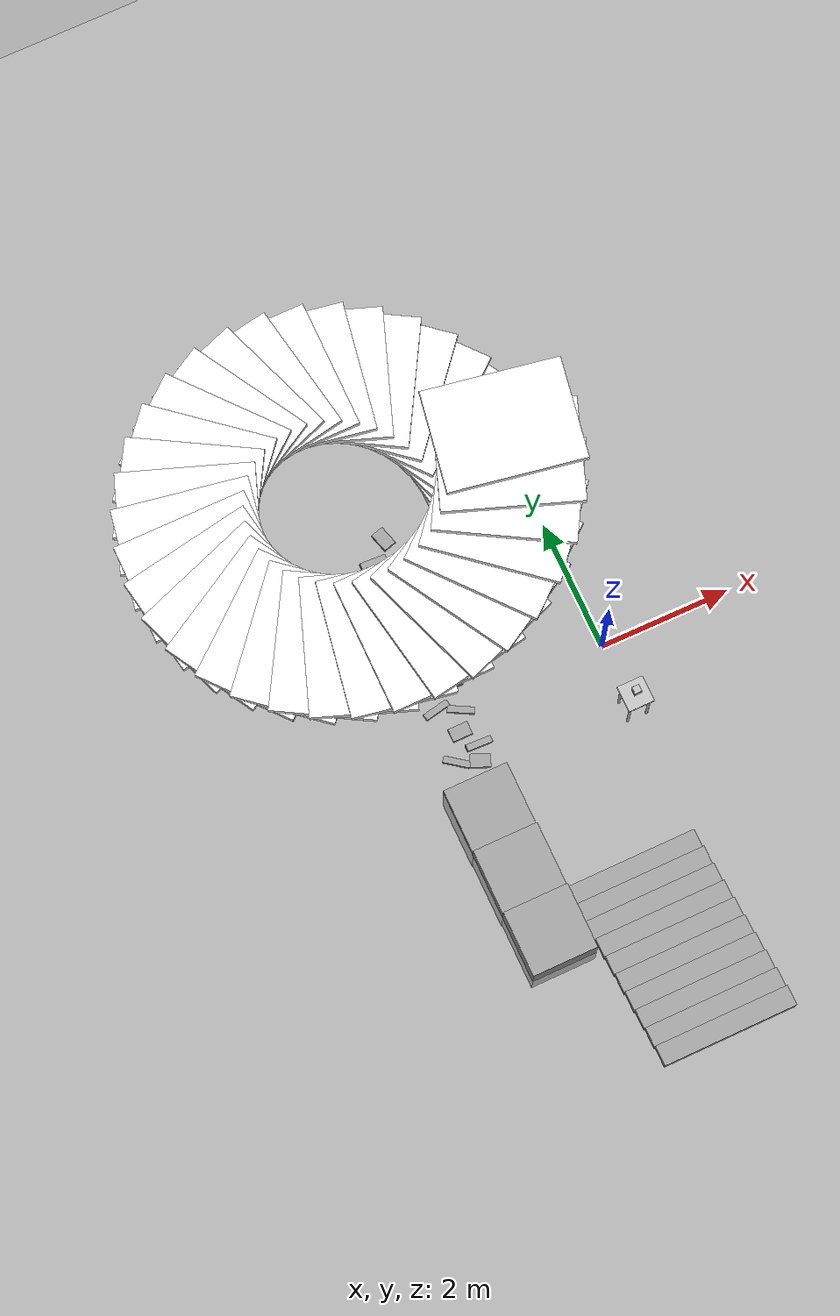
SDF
<sdf version="1.7">
 <world name="default">
  <model name="ground_plane">
   <static>1</static>
   <link name="link">
    <collision name="collision">
     <geometry><plane><normal>0 0 1</normal><size>100 100</size></plane></geometry>
     <surface><friction><ode><mu>200</mu><mu2>200</mu2></ode></friction></surface>
    </collision>
    <visual name="visual">
     <cast_shadows>0</cast_shadows>
     <geometry><plane><normal>0 0 1</normal><size>100 100</size></plane></geometry>
     <material>
      <script><uri>file://media/materials/scripts/gazebo.material</uri><name>Gazebo/Grey</name></script>
     </material>
    </visual>
   </link>
  </model>
  <model name="box_0.4_0.1_0.07_5">
   <pose>-2.38032 1.20344 0 0 -0 0.675768</pose>
   <link name="Stairs_14">
    <visual name="Stairs_14_Visual_0">
     <pose>0 0 0.035 0 -0 0</pose>
     <geometry><box><size>0.4 0.1 0.07</size></box></geometry>
     <material>
      <script><uri>file://media/materials/scripts/gazebo.material</uri><name>Gazebo/Grey</name></script>
      <ambient>1 1 1 1</ambient>
     </material>
     <meta><layer>0</layer></meta>
    </visual>
    <collision name="Stairs_14_Collision_0">
     <geometry><box><size>0.4 0.1 0.07</size></box></geometry>
     <pose>0 0 0.035 0 -0 0</pose>
     <surface><friction><ode><mu>200</mu><mu2>200</mu2></ode></friction></surface>
    </collision>
   </link>
   <static>1</static>
  </model>
  <model name="box_0.4_0.1_0.07_10">
   <pose>-2.5817 0.133983 0 0 -0 0.188316</pose>
   <link name="Stairs_14">
    <visual name="Stairs_14_Visual_0">
     <pose>0 0 0.035 0 -0 0</pose>
     <geometry><box><size>0.4 0.1 0.07</size></box></geometry>
     <material>
      <script><uri>file://media/materials/scripts/gazebo.material</uri><name>Gazebo/Grey</name></script>
      <ambient>1 1 1 1</ambient>
     </material>
     <meta><layer>0</layer></meta>
    </visual>
    <collision name="Stairs_14_Collision_0">
     <geometry><box><size>0.4 0.1 0.07</size></box></geometry>
     <pose>0 0 0.035 0 -0 0</pose>
     <surface><friction><ode><mu>200</mu><mu2>200</mu2></ode></friction></surface>
    </collision>
   </link>
   <static>1</static>
  </model>
  <model name="box_0.3_0.2_0.1_1">
   <pose>-2.32668 -0.803117 0 0 0 -0.389703</pose>
   <link name="Stairs_9">
    <visual name="Stairs_9_Visual_0">
     <pose>0 0 0.035 0 -0 0</pose>
     <geometry><box><size>0.3 0.2 0.07</size></box></geometry>
     <material>
      <script><uri>file://media/materials/scripts/gazebo.material</uri><name>Gazebo/Grey</name></script>
      <ambient>1 1 1 1</ambient>
     </material>
     <meta><layer>0</layer></meta>
    </visual>
    <collision name="Stairs_9_Collision_0">
     <geometry><box><size>0.3 0.2 0.07</size></box></geometry>
     <pose>0 0 0.035 0 -0 0</pose>
     <surface><friction><ode><mu>200</mu><mu2>200</mu2></ode></friction></surface>
    </collision>
   </link>
   <static>1</static>
  </model>
  <model name="box_0.3_0.2_0.1_6">
   <pose>-2.40905 -0.299713 0 0 -0 0</pose>
   <link name="Stairs_9">
    <visual name="Stairs_9_Visual_0">
     <pose>0 0 0.035 0 -0 0</pose>
     <geometry><box><size>0.3 0.2 0.07</size></box></geometry>
     <material>
      <script><uri>file://media/materials/scripts/gazebo.material</uri><name>Gazebo/Grey</name></script>
      <ambient>1 1 1 1</ambient>
     </material>
     <meta><layer>0</layer></meta>
    </visual>
    <collision name="Stairs_9_Collision_0">
     <geometry><box><size>0.3 0.2 0.07</size></box></geometry>
     <pose>0 0 0.035 0 -0 0</pose>
     <surface><friction><ode><mu>200</mu><mu2>200</mu2></ode></friction></surface>
    </collision>
   </link>
   <static>1</static>
  </model>
  <model name="box_0.3_0.2_0.1_7">
   <pose>-2.29296 0.634577 0 0 0.156533 0</pose>
   <link name="Stairs_9">
    <visual name="Stairs_9_Visual_0">
     <pose>0 0 0.035 0 -0 0</pose>
     <geometry><box><size>0.3 0.2 0.07</size></box></geometry>
     <material>
      <script><uri>file://media/materials/scripts/gazebo.material</uri><name>Gazebo/Grey</name></script>
      <ambient>1 1 1 1</ambient>
     </material>
     <meta><layer>0</layer></meta>
    </visual>
    <collision name="Stairs_9_Collision_0">
     <geometry><box><size>0.3 0.2 0.07</size></box></geometry>
     <pose>0 0 0.035 0 -0 0</pose>
     <surface><friction><ode><mu>200</mu><mu2>200</mu2></ode></friction></surface>
    </collision>
   </link>
   <static>1</static>
  </model>
  <model name="box_0.4_0.1_0.07_21">
   <pose>-2.33177 1.84563 0 -0.297405 -0 -0.354338</pose>
   <link name="Stairs_14">
    <visual name="Stairs_14_Visual_0">
     <pose>0 0 0.035 0 -0 0</pose>
     <geometry><box><size>0.4 0.1 0.07</size></box></geometry>
     <material>
      <script><uri>file://media/materials/scripts/gazebo.material</uri><name>Gazebo/Grey</name></script>
      <ambient>1 1 1 1</ambient>
     </material>
     <meta><layer>0</layer></meta>
    </visual>
    <collision name="Stairs_14_Collision_0">
     <geometry><box><size>0.4 0.1 0.07</size></box></geometry>
     <pose>0 0 0.035 0 -0 0</pose>
     <surface><friction><ode><mu>200</mu><mu2>200</mu2></ode></friction></surface>
    </collision>
   </link>
   <static>1</static>
  </model>
  <model name="box_0.4_0.1_0.07_31">
   <pose>-2.24494 -0.568367 0 0 0.191516 0</pose>
   <link name="Stairs_14">
    <visual name="Stairs_14_Visual_0">
     <pose>0 0 0.035 0 -0 0</pose>
     <geometry><box><size>0.4 0.1 0.07</size></box></geometry>
     <material>
      <script><uri>file://media/materials/scripts/gazebo.material</uri><name>Gazebo/Grey</name></script>
      <ambient>1 1 1 1</ambient>
     </material>
     <meta><layer>0</layer></meta>
    </visual>
    <collision name="Stairs_14_Collision_0">
     <geometry><box><size>0.4 0.1 0.07</size></box></geometry>
     <pose>0 0 0.035 0 -0 0</pose>
     <surface><friction><ode><mu>200</mu><mu2>200</mu2></ode></friction></surface>
    </collision>
   </link>
   <static>1</static>
  </model>
  <model name="box_0.4_0.1_0.07_32">
   <pose>-2.26101 -0.007459 0 0 0 -0.492553</pose>
   <link name="Stairs_14">
    <visual name="Stairs_14_Visual_0">
     <pose>0 0 0.035 0 -0 0</pose>
     <geometry><box><size>0.4 0.1 0.07</size></box></geometry>
     <material>
      <script><uri>file://media/materials/scripts/gazebo.material</uri><name>Gazebo/Grey</name></script>
      <ambient>1 1 1 1</ambient>
     </material>
     <meta><layer>0</layer></meta>
    </visual>
    <collision name="Stairs_14_Collision_0">
     <geometry><box><size>0.4 0.1 0.07</size></box></geometry>
     <pose>0 0 0.035 0 -0 0</pose>
     <surface><friction><ode><mu>200</mu><mu2>200</mu2></ode></friction></surface>
    </collision>
   </link>
   <static>1</static>
  </model>
  <model name="box_0.4_0.1_0.07_33">
   <pose>-2.2734 0.372881 0 0 -0 0</pose>
   <link name="Stairs_14">
    <visual name="Stairs_14_Visual_0">
     <pose>0 0 0.035 0 -0 0</pose>
     <geometry><box><size>0.4 0.1 0.07</size></box></geometry>
     <material>
      <script><uri>file://media/materials/scripts/gazebo.material</uri><name>Gazebo/Grey</name></script>
      <ambient>1 1 1 1</ambient>
     </material>
     <meta><layer>0</layer></meta>
    </visual>
    <collision name="Stairs_14_Collision_0">
     <geometry><box><size>0.4 0.1 0.07</size></box></geometry>
     <pose>0 0 0.035 0 -0 0</pose>
     <surface><friction><ode><mu>200</mu><mu2>200</mu2></ode></friction></surface>
    </collision>
   </link>
   <static>1</static>
  </model>
  <model name="box_0.4_0.1_0.07_34">
   <pose>-2.37805 0.96323 0 0 -0 0.493596</pose>
   <link name="Stairs_14">
    <visual name="Stairs_14_Visual_0">
     <pose>0 0 0.035 0 -0 0</pose>
     <geometry><box><size>0.4 0.1 0.07</size></box></geometry>
     <material>
      <script><uri>file://media/materials/scripts/gazebo.material</uri><name>Gazebo/Grey</name></script>
      <ambient>1 1 1 1</ambient>
     </material>
     <meta><layer>0</layer></meta>
    </visual>
    <collision name="Stairs_14_Collision_0">
     <geometry><box><size>0.4 0.1 0.07</size></box></geometry>
     <pose>0 0 0.035 0 -0 0</pose>
     <surface><friction><ode><mu>200</mu><mu2>200</mu2></ode></friction></surface>
    </collision>
   </link>
   <static>1</static>
  </model>
  <model name="box_0.4_0.1_0.07_35">
   <pose>-2.3534 1.63255 0 0 -0 0</pose>
   <link name="Stairs_14">
    <visual name="Stairs_14_Visual_0">
     <pose>0 0 0.035 0 -0 0</pose>
     <geometry><box><size>0.4 0.1 0.07</size></box></geometry>
     <material>
      <script><uri>file://media/materials/scripts/gazebo.material</uri><name>Gazebo/Grey</name></script>
      <ambient>1 1 1 1</ambient>
     </material>
     <meta><layer>0</layer></meta>
    </visual>
    <collision name="Stairs_14_Collision_0">
     <geometry><box><size>0.4 0.1 0.07</size></box></geometry>
     <pose>0 0 0.035 0 -0 0</pose>
     <surface><friction><ode><mu>200</mu><mu2>200</mu2></ode></friction></surface>
    </collision>
   </link>
   <static>1</static>
  </model>
  <model name="box_0.4_0.1_0.07_36">
   <pose>-2.63647 1.28112 0 0 -0 0</pose>
   <link name="Stairs_14">
    <visual name="Stairs_14_Visual_0">
     <pose>0 0 0.035 0 -0 0</pose>
     <geometry><box><size>0.4 0.1 0.07</size></box></geometry>
     <material>
      <script><uri>file://media/materials/scripts/gazebo.material</uri><name>Gazebo/Grey</name></script>
      <ambient>1 1 1 1</ambient>
     </material>
     <meta><layer>0</layer></meta>
    </visual>
    <collision name="Stairs_14_Collision_0">
     <geometry><box><size>0.4 0.1 0.07</size></box></geometry>
     <pose>0 0 0.035 0 -0 0</pose>
     <surface><friction><ode><mu>200</mu><mu2>200</mu2></ode></friction></surface>
    </collision>
   </link>
   <static>1</static>
  </model>
  <model name="stair-3">
   <pose>-1 -4.5 0 0 -0 0</pose>
   <link name="Stairs_6">
    <visual name="Stairs_6_Visual_0">
     <pose>0 1.35 0.075 0 -0 0</pose>
     <geometry><box><size>2 0.3 0.15</size></box></geometry>
     <material>
      <script><uri>file://media/materials/scripts/gazebo.material</uri><name>Gazebo/Grey</name></script>
      <ambient>1 1 1 1</ambient>
     </material>
     <meta><layer>0</layer></meta>
    </visual>
    <collision name="Stairs_6_Collision_0">
     <geometry><box><size>2 0.3 0.15</size></box></geometry>
     <pose>0 1.35 0.075 0 -0 0</pose>
    </collision>
    <visual name="Stairs_6_Visual_1">
     <pose>0 1.05 0.225 0 -0 0</pose>
     <geometry><box><size>2 0.3 0.15</size></box></geometry>
     <material>
      <script><uri>file://media/materials/scripts/gazebo.material</uri><name>Gazebo/Grey</name></script>
      <ambient>1 1 1 1</ambient>
     </material>
     <meta><layer>0</layer></meta>
    </visual>
    <collision name="Stairs_6_Collision_1">
     <geometry><box><size>2 0.3 0.15</size></box></geometry>
     <pose>0 1.05 0.225 0 -0 0</pose>
     <surface><friction><ode><mu>200</mu><mu2>200</mu2></ode></friction></surface>
    </collision>
    <visual name="Stairs_6_Visual_2">
     <pose>0 0.75 0.375 0 -0 0</pose>
     <geometry><box><size>2 0.3 0.15</size></box></geometry>
     <material>
      <script><uri>file://media/materials/scripts/gazebo.material</uri><name>Gazebo/Grey</name></script>
      <ambient>1 1 1 1</ambient>
     </material>
     <meta><layer>0</layer></meta>
    </visual>
    <collision name="Stairs_6_Collision_2">
     <geometry><box><size>2 0.3 0.15</size></box></geometry>
     <pose>0 0.75 0.375 0 -0 0</pose>
    </collision>
    <visual name="Stairs_6_Visual_3">
     <pose>0 0.45 0.525 0 -0 0</pose>
     <geometry><box><size>2 0.3 0.15</size></box></geometry>
     <material>
      <script><uri>file://media/materials/scripts/gazebo.material</uri><name>Gazebo/Grey</name></script>
      <ambient>1 1 1 1</ambient>
     </material>
     <meta><layer>0</layer></meta>
    </visual>
    <collision name="Stairs_6_Collision_3">
     <geometry><box><size>2 0.3 0.15</size></box></geometry>
     <pose>0 0.45 0.525 0 -0 0</pose>
    </collision>
    <visual name="Stairs_6_Visual_4">
     <pose>0 0.15 0.675 0 -0 0</pose>
     <geometry><box><size>2 0.3 0.15</size></box></geometry>
     <material>
      <script><uri>file://media/materials/scripts/gazebo.material</uri><name>Gazebo/Grey</name></script>
      <ambient>1 1 1 1</ambient>
     </material>
     <meta><layer>0</layer></meta>
    </visual>
    <collision name="Stairs_6_Collision_4">
     <geometry><box><size>2 0.3 0.15</size></box></geometry>
     <pose>0 0.15 0.675 0 -0 0</pose>
    </collision>
    <visual name="Stairs_6_Visual_5">
     <pose>0 -0.15 0.825 0 -0 0</pose>
     <geometry><box><size>2 0.3 0.15</size></box></geometry>
     <material>
      <script><uri>file://media/materials/scripts/gazebo.material</uri><name>Gazebo/Grey</name></script>
      <ambient>1 1 1 1</ambient>
     </material>
     <meta><layer>0</layer></meta>
    </visual>
    <collision name="Stairs_6_Collision_5">
     <geometry><box><size>2 0.3 0.15</size></box></geometry>
     <pose>0 -0.15 0.825 0 -0 0</pose>
    </collision>
    <visual name="Stairs_6_Visual_6">
     <pose>0 -0.45 0.975 0 -0 0</pose>
     <geometry><box><size>2 0.3 0.15</size></box></geometry>
     <material>
      <script><uri>file://media/materials/scripts/gazebo.material</uri><name>Gazebo/Grey</name></script>
      <ambient>1 1 1 1</ambient>
     </material>
     <meta><layer>0</layer></meta>
    </visual>
    <collision name="Stairs_6_Collision_6">
     <geometry><box><size>2 0.3 0.15</size></box></geometry>
     <pose>0 -0.45 0.975 0 -0 0</pose>
    </collision>
    <visual name="Stairs_6_Visual_7">
     <pose>0 -0.75 1.125 0 -0 0</pose>
     <geometry><box><size>2 0.3 0.15</size></box></geometry>
     <material>
      <script><uri>file://media/materials/scripts/gazebo.material</uri><name>Gazebo/Grey</name></script>
      <ambient>1 1 1 1</ambient>
     </material>
     <meta><layer>0</layer></meta>
    </visual>
    <collision name="Stairs_6_Collision_7">
     <geometry><box><size>2 0.3 0.15</size></box></geometry>
     <pose>0 -0.75 1.125 0 -0 0</pose>
    </collision>
    <visual name="Stairs_6_Visual_8">
     <pose>0 -1.05 1.275 0 -0 0</pose>
     <geometry><box><size>2 0.3 0.15</size></box></geometry>
     <material>
      <script><uri>file://media/materials/scripts/gazebo.material</uri><name>Gazebo/Grey</name></script>
      <ambient>1 1 1 1</ambient>
     </material>
     <meta><layer>0</layer></meta>
    </visual>
    <collision name="Stairs_6_Collision_8">
     <geometry><box><size>2 0.3 0.15</size></box></geometry>
     <pose>0 -1.05 1.275 0 -0 0</pose>
    </collision>
    <visual name="Stairs_6_Visual_9">
     <pose>0 -1.35 1.425 0 -0 0</pose>
     <geometry><box><size>2 0.3 0.15</size></box></geometry>
     <material>
      <script><uri>file://media/materials/scripts/gazebo.material</uri><name>Gazebo/Grey</name></script>
      <ambient>1 1 1 1</ambient>
     </material>
     <meta><layer>0</layer></meta>
    </visual>
    <collision name="Stairs_6_Collision_9">
     <geometry><box><size>2 0.3 0.15</size></box></geometry>
     <pose>0 -1.35 1.425 0 -0 0</pose>
    </collision>
   </link>
   <static>1</static>
  </model>
  <model name="box_0.3_0.2_0.1_9_clone">
   <pose>-2.33907 2.30045 0 0 -0 0.193818</pose>
   <link name="Stairs_9">
    <visual name="Stairs_9_Visual_0">
     <pose>0 0 0.035 0 -0 0</pose>
     <geometry><box><size>0.3 0.2 0.07</size></box></geometry>
     <material>
      <script><uri>file://media/materials/scripts/gazebo.material</uri><name>Gazebo/Grey</name></script>
      <ambient>1 1 1 1</ambient>
     </material>
     <meta><layer>0</layer></meta>
    </visual>
    <collision name="Stairs_9_Collision_0">
     <geometry><box><size>0.3 0.2 0.07</size></box></geometry>
     <pose>0 0 0.035 0 -0 0</pose>
     <surface><friction><ode><mu>200</mu><mu2>200</mu2></ode></friction></surface>
    </collision>
   </link>
   <static>1</static>
  </model>
  <model name="box_0.4_0.1_0.07_36_clone_0">
   <pose>-2.4986 2.52155 0 0 0.192346 0</pose>
   <link name="Stairs_14">
    <visual name="Stairs_14_Visual_0">
     <pose>0 0 0.035 0 -0 0</pose>
     <geometry><box><size>0.4 0.1 0.07</size></box></geometry>
     <material>
      <script><uri>file://media/materials/scripts/gazebo.material</uri><name>Gazebo/Grey</name></script>
      <ambient>1 1 1 1</ambient>
     </material>
     <meta><layer>0</layer></meta>
    </visual>
    <collision name="Stairs_14_Collision_0">
     <geometry><box><size>0.4 0.1 0.07</size></box></geometry>
     <pose>0 0 0.035 0 -0 0</pose>
     <surface><friction><ode><mu>200</mu><mu2>200</mu2></ode></friction></surface>
    </collision>
   </link>
   <static>1</static>
  </model>
  <model name="box_0.3_0.2_0.1_clone_0">
   <pose>-2.21131 2.77777 0 0 -0 1.85347</pose>
   <link name="Stairs_9">
    <visual name="Stairs_9_Visual_0">
     <pose>0 0 0.035 0 -0 0</pose>
     <geometry><box><size>0.3 0.2 0.07</size></box></geometry>
     <material>
      <script><uri>file://media/materials/scripts/gazebo.material</uri><name>Gazebo/Grey</name></script>
      <ambient>1 1 1 1</ambient>
     </material>
     <meta><layer>0</layer></meta>
    </visual>
    <collision name="Stairs_9_Collision_0">
     <geometry><box><size>0.3 0.2 0.07</size></box></geometry>
     <pose>0 0 0.035 0 -0 0</pose>
     <surface><friction><ode><mu>200</mu><mu2>200</mu2></ode></friction></surface>
    </collision>
   </link>
   <static>1</static>
  </model>
  <model name="box_0.3_0.2_0.1_clone_1">
   <pose>-2.19194 1.98573 0 -0.098342 0 1.85347</pose>
   <link name="Stairs_9">
    <visual name="Stairs_9_Visual_0">
     <pose>0 0 0.035 0 -0 0</pose>
     <geometry><box><size>0.3 0.2 0.07</size></box></geometry>
     <material>
      <script><uri>file://media/materials/scripts/gazebo.material</uri><name>Gazebo/Grey</name></script>
      <ambient>1 1 1 1</ambient>
     </material>
     <meta><layer>0</layer></meta>
    </visual>
    <collision name="Stairs_9_Collision_0">
     <geometry><box><size>0.3 0.2 0.07</size></box></geometry>
     <pose>0 0 0.035 0 -0 0</pose>
     <surface><friction><ode><mu>200</mu><mu2>200</mu2></ode></friction></surface>
    </collision>
   </link>
   <static>1</static>
  </model>
  <model name="box_0.3_0.2_0.1_clone_2">
   <pose>-2.17677 1.17861 0 0 -0 1.85347</pose>
   <link name="Stairs_9">
    <visual name="Stairs_9_Visual_0">
     <pose>0 0 0.035 0 -0 0</pose>
     <geometry><box><size>0.3 0.2 0.07</size></box></geometry>
     <material>
      <script><uri>file://media/materials/scripts/gazebo.material</uri><name>Gazebo/Grey</name></script>
      <ambient>1 1 1 1</ambient>
     </material>
     <meta><layer>0</layer></meta>
    </visual>
    <collision name="Stairs_9_Collision_0">
     <geometry><box><size>0.3 0.2 0.07</size></box></geometry>
     <pose>0 0 0.035 0 -0 0</pose>
     <surface><friction><ode><mu>200</mu><mu2>200</mu2></ode></friction></surface>
    </collision>
   </link>
   <static>1</static>
  </model>
  <model name="box_0.4_0.1_0.07_13_clone_0">
   <pose>-2.6412 -0.681131 0 0 0 -0.645463</pose>
   <link name="Stairs_14">
    <visual name="Stairs_14_Visual_0">
     <pose>0 0 0.035 0 -0 0</pose>
     <geometry><box><size>0.4 0.1 0.07</size></box></geometry>
     <material>
      <script><uri>file://media/materials/scripts/gazebo.material</uri><name>Gazebo/Grey</name></script>
      <ambient>1 1 1 1</ambient>
     </material>
     <meta><layer>0</layer></meta>
    </visual>
    <collision name="Stairs_14_Collision_0">
     <geometry><box><size>0.4 0.1 0.07</size></box></geometry>
     <pose>0 0 0.035 0 -0 0</pose>
     <surface><friction><ode><mu>200</mu><mu2>200</mu2></ode></friction></surface>
    </collision>
   </link>
   <static>1</static>
  </model>
  <model name="box_1_1_1">
   <pose>-2.5 -2.5 -0.7 0 -0 0</pose>
   <link name="Stairs_8">
    <visual name="Stairs_8_Visual_0">
     <pose>0 0 0.5 0 -0 0</pose>
     <geometry><box><size>1 1 1</size></box></geometry>
     <material>
      <script><uri>file://media/materials/scripts/gazebo.material</uri><name>Gazebo/Grey</name></script>
      <ambient>1 1 1 1</ambient>
     </material>
     <meta><layer>0</layer></meta>
    </visual>
    <collision name="Stairs_8_Collision_0">
     <geometry><box><size>1 1 1</size></box></geometry>
     <pose>0 0 0.5 0 -0 0</pose>
     <surface><friction><ode><mu>200</mu><mu2>200</mu2></ode></friction></surface>
    </collision>
   </link>
   <static>1</static>
  </model>
  <model name="box_1_1_1_clone">
   <pose>-2.5 -1.5 -0.865665 0 -0 0</pose>
   <link name="Stairs_8">
    <visual name="Stairs_8_Visual_0">
     <pose>0 0 0.5 0 -0 0</pose>
     <geometry><box><size>1 1 1</size></box></geometry>
     <material>
      <script><uri>file://media/materials/scripts/gazebo.material</uri><name>Gazebo/Grey</name></script>
      <ambient>1 1 1 1</ambient>
     </material>
     <meta><layer>0</layer></meta>
    </visual>
    <collision name="Stairs_8_Collision_0">
     <geometry><box><size>1 1 1</size></box></geometry>
     <pose>0 0 0.5 0 -0 0</pose>
     <surface><friction><ode><mu>200</mu><mu2>200</mu2></ode></friction></surface>
    </collision>
   </link>
   <static>1</static>
  </model>
  <model name="box_1_1_1_clone_1_clone_2">
   <pose>-2.49977 -3.49841 -0.551045 0 -0 0</pose>
   <link name="Stairs_8">
    <visual name="Stairs_8_Visual_0">
     <pose>0 0 0.5 0 -0 0</pose>
     <geometry><box><size>1 1 1</size></box></geometry>
     <material>
      <script><uri>file://media/materials/scripts/gazebo.material</uri><name>Gazebo/Grey</name></script>
      <ambient>1 1 1 1</ambient>
     </material>
     <meta><layer>0</layer></meta>
    </visual>
    <collision name="Stairs_8_Collision_0">
     <geometry><box><size>1 1 1</size></box></geometry>
     <pose>0 0 0.5 0 -0 0</pose>
     <surface><friction><ode><mu>200</mu><mu2>200</mu2></ode></friction></surface>
    </collision>
   </link>
   <static>1</static>
  </model>
  <model name="apriltag_cube">
   <joint name="world_to_table_joint" type="fixed">
    <pose relative_to="__model__">0 -1 0.8 0 -0 0</pose>
    <parent>world</parent>
    <child>table_link</child>
   </joint>
   <link name="table_link">
    <pose relative_to="world_to_table_joint">0 0 0 0 -0 0</pose>
    <inertial>
     <pose>0 0 -0.11169 0 -0 0</pose>
     <mass>7.1</mass>
     <inertia>
      <ixx>0.41702</ixx>
      <ixy>0</ixy>
      <ixz>0</ixz>
      <iyy>0.41702</iyy>
      <iyz>-3.10002e-18</iyz>
      <izz>0.1941</izz>
     </inertia>
    </inertial>
    <collision name="table_link_collision"><geometry><box><size>0.4 0.4 0.04</size></box></geometry></collision>
    <collision name="table_link_fixed_joint_lump__apriltag_marker_0_collision_1">
     <pose>-0.055 0 0.235 3.14159 -1.57079 3.14159</pose>
     <geometry><box><size>0.11 0.11 0.001</size></box></geometry>
    </collision>
    <collision name="table_link_fixed_joint_lump__apriltag_marker_1_collision_2">
     <pose>0.055 0 0.235 9.3e-05 -1.57079 3.14159</pose>
     <geometry><box><size>0.11 0.11 0.001</size></box></geometry>
    </collision>
    <collision name="table_link_fixed_joint_lump__apriltag_marker_111_collision_3">
     <pose>-0 0 0.18 0 5e-06 0</pose>
     <geometry><box><size>0.11 0.11 0.001</size></box></geometry>
    </collision>
    <collision name="table_link_fixed_joint_lump__apriltag_marker_2_collision_4">
     <pose>-0 0.055 0.235 1.57079 -1.57079 3.14159</pose>
     <geometry><box><size>0.11 0.11 0.001</size></box></geometry>
    </collision>
    <collision name="table_link_fixed_joint_lump__apriltag_marker_3_collision_5">
     <pose>-0 -0.055 0.235 -1.57079 -1.57079 3.14159</pose>
     <geometry><box><size>0.11 0.11 0.001</size></box></geometry>
    </collision>
    <collision name="table_link_fixed_joint_lump__apriltag_marker_4_collision_6">
     <pose>-1e-06 0 0.29 0 5e-06 0</pose>
     <geometry><box><size>0.11 0.11 0.001</size></box></geometry>
    </collision>
    <collision name="table_link_fixed_joint_lump__table_leg1_collision_7">
     <pose>0.15 0.15 -0.4 0 -0 0</pose>
     <geometry><cylinder><length>0.8</length><radius>0.02</radius></cylinder></geometry>
    </collision>
    <collision name="table_link_fixed_joint_lump__table_leg2_collision_8">
     <pose>-0.15 0.15 -0.4 0 -0 0</pose>
     <geometry><cylinder><length>0.8</length><radius>0.02</radius></cylinder></geometry>
    </collision>
    <collision name="table_link_fixed_joint_lump__table_leg3_collision_9">
     <pose>0.15 -0.15 -0.4 0 -0 0</pose>
     <geometry><cylinder><length>0.8</length><radius>0.02</radius></cylinder></geometry>
    </collision>
    <collision name="table_link_fixed_joint_lump__table_leg4_collision_10">
     <pose>-0.15 -0.15 -0.4 0 -0 0</pose>
     <geometry><cylinder><length>0.8</length><radius>0.02</radius></cylinder></geometry>
    </collision>
    <visual name="table_link_visual"><geometry><box><size>0.4 0.4 0.04</size></box></geometry></visual>
    <visual name="table_link_fixed_joint_lump__apriltag_marker_0_visual_1">
     <pose>-0.055 0 0.235 3.14159 -1.57079 3.14159</pose>
     <geometry><box><size>0.11 0.11 0.001</size></box></geometry>
     <material>
      <script>
       <uri>file:///home/power/leju_ws/kuavo-ros-opensource-opensource-fandes-dev-add-ss-stair-vision/src/kuavo_assets/models/apriltag/materials/apriltag_0.material</uri>
       <name>AprilTag/Marker0</name>
      </script>
      <shader type="pixel"><normal_map>__default__</normal_map></shader>
      <double_sided>0</double_sided>
     </material>
    </visual>
    <visual name="table_link_fixed_joint_lump__apriltag_marker_1_visual_2">
     <pose>0.055 0 0.235 9.3e-05 -1.57079 3.14159</pose>
     <geometry><box><size>0.11 0.11 0.001</size></box></geometry>
     <material>
      <script>
       <uri>file:///home/power/leju_ws/kuavo-ros-opensource-opensource-fandes-dev-add-ss-stair-vision/src/kuavo_assets/models/apriltag/materials/apriltag_1.material</uri>
       <name>AprilTag/Marker1</name>
      </script>
      <shader type="pixel"><normal_map>__default__</normal_map></shader>
      <double_sided>0</double_sided>
     </material>
    </visual>
    <visual name="table_link_fixed_joint_lump__apriltag_marker_111_visual_3">
     <pose>-0 0 0.18 0 5e-06 0</pose>
     <geometry><box><size>0.11 0.11 0.001</size></box></geometry>
     <material>
      <script>
       <uri>file:///home/power/leju_ws/kuavo-ros-opensource-opensource-fandes-dev-add-ss-stair-vision/src/kuavo_assets/models/apriltag/materials/apriltag_111.material</uri>
       <name>AprilTag/Marker111</name>
      </script>
      <shader type="pixel"><normal_map>__default__</normal_map></shader>
      <double_sided>0</double_sided>
     </material>
    </visual>
    <visual name="table_link_fixed_joint_lump__apriltag_marker_2_visual_4">
     <pose>-0 0.055 0.235 1.57079 -1.57079 3.14159</pose>
     <geometry><box><size>0.11 0.11 0.001</size></box></geometry>
     <material>
      <script>
       <uri>file:///home/power/leju_ws/kuavo-ros-opensource-opensource-fandes-dev-add-ss-stair-vision/src/kuavo_assets/models/apriltag/materials/apriltag_2.material</uri>
       <name>AprilTag/Marker2</name>
      </script>
      <shader type="pixel"><normal_map>__default__</normal_map></shader>
      <double_sided>0</double_sided>
     </material>
    </visual>
    <visual name="table_link_fixed_joint_lump__apriltag_marker_3_visual_5">
     <pose>-0 -0.055 0.235 -1.57079 -1.57079 3.14159</pose>
     <geometry><box><size>0.11 0.11 0.001</size></box></geometry>
     <material>
      <script>
       <uri>file:///home/power/leju_ws/kuavo-ros-opensource-opensource-fandes-dev-add-ss-stair-vision/src/kuavo_assets/models/apriltag/materials/apriltag_3.material</uri>
       <name>AprilTag/Marker3</name>
      </script>
      <shader type="pixel"><normal_map>__default__</normal_map></shader>
      <double_sided>0</double_sided>
     </material>
    </visual>
    <visual name="table_link_fixed_joint_lump__apriltag_marker_4_visual_6">
     <pose>-1e-06 0 0.29 0 5e-06 0</pose>
     <geometry><box><size>0.11 0.11 0.001</size></box></geometry>
     <material>
      <script>
       <uri>file:///home/power/leju_ws/kuavo-ros-opensource-opensource-fandes-dev-add-ss-stair-vision/src/kuavo_assets/models/apriltag/materials/apriltag_4.material</uri>
       <name>AprilTag/Marker4</name>
      </script>
      <shader type="pixel"><normal_map>__default__</normal_map></shader>
      <double_sided>0</double_sided>
     </material>
    </visual>
    <visual name="table_link_fixed_joint_lump__table_leg1_visual_7">
     <pose>0.15 0.15 -0.4 0 -0 0</pose>
     <geometry><cylinder><length>0.8</length><radius>0.02</radius></cylinder></geometry>
    </visual>
    <visual name="table_link_fixed_joint_lump__table_leg2_visual_8">
     <pose>-0.15 0.15 -0.4 0 -0 0</pose>
     <geometry><cylinder><length>0.8</length><radius>0.02</radius></cylinder></geometry>
    </visual>
    <visual name="table_link_fixed_joint_lump__table_leg3_visual_9">
     <pose>0.15 -0.15 -0.4 0 -0 0</pose>
     <geometry><cylinder><length>0.8</length><radius>0.02</radius></cylinder></geometry>
    </visual>
    <visual name="table_link_fixed_joint_lump__table_leg4_visual_10">
     <pose>-0.15 -0.15 -0.4 0 -0 0</pose>
     <geometry><cylinder><length>0.8</length><radius>0.02</radius></cylinder></geometry>
    </visual>
   </link>
   <frame name="apriltag_joint_0" attached_to="apriltag_cube_base">
    <pose>0.055 0 -0.165 3.14159 1.57079 3.14159</pose>
   </frame>
   <frame name="apriltag_marker_0" attached_to="apriltag_joint_0"/>
   <frame name="apriltag_joint_1" attached_to="apriltag_cube_base">
    <pose>-0.055 0 -0.165 3.14159 1.57079 -9.3e-05</pose>
   </frame>
   <frame name="apriltag_marker_1" attached_to="apriltag_joint_1"/>
   <frame name="apriltag_joint_111" attached_to="apriltag_cube_base">
    <pose>0 0 -0.11 3.14159 -7e-06 3.14159</pose>
   </frame>
   <frame name="apriltag_marker_111" attached_to="apriltag_joint_111"/>
   <frame name="apriltag_joint_2" attached_to="apriltag_cube_base">
    <pose>0 0.055 -0.165 3.14159 1.57079 -1.57079</pose>
   </frame>
   <frame name="apriltag_marker_2" attached_to="apriltag_joint_2"/>
   <frame name="apriltag_joint_3" attached_to="apriltag_cube_base">
    <pose>0 -0.055 -0.165 3.14159 1.57079 1.57079</pose>
   </frame>
   <frame name="apriltag_marker_3" attached_to="apriltag_joint_3"/>
   <frame name="apriltag_joint_4" attached_to="apriltag_cube_base">
    <pose>0 0 -0.22 3.14159 -7e-06 3.14159</pose>
   </frame>
   <frame name="apriltag_marker_4" attached_to="apriltag_joint_4"/>
   <frame name="table_to_cube_joint" attached_to="table_link"><pose>0 0 0.07 3.14159 3e-06 3.14159</pose></frame>
   <frame name="apriltag_cube_base" attached_to="table_to_cube_joint"/>
   <frame name="table_to_leg1_joint" attached_to="table_link"><pose>0.15 0.15 -0.4 0 -0 0</pose></frame>
   <frame name="table_leg1" attached_to="table_to_leg1_joint"/>
   <frame name="table_to_leg2_joint" attached_to="table_link"><pose>-0.15 0.15 -0.4 0 -0 0</pose></frame>
   <frame name="table_leg2" attached_to="table_to_leg2_joint"/>
   <frame name="table_to_leg3_joint" attached_to="table_link"><pose>0.15 -0.15 -0.4 0 -0 0</pose></frame>
   <frame name="table_leg3" attached_to="table_to_leg3_joint"/>
   <frame name="table_to_leg4_joint" attached_to="table_link"><pose>-0.15 -0.15 -0.4 0 -0 0</pose></frame>
   <frame name="table_leg4" attached_to="table_to_leg4_joint"/>
  </model>
  <model name="spiral_stair">
   <static>true</static>
   <pose>-2.65 3 0 0 0 0</pose>
   <link name="step_0">
    <pose>2.25000 0.00000 0.05000 0 0 0.000000</pose>
    <collision name="collision"><geometry><box><size>2 1.5 0.1</size></box></geometry></collision>
    <visual name="visual">
     <geometry><box><size>2 1.5 0.1</size></box></geometry>
     <material><ambient>1 1 1 1</ambient><diffuse>1 1 1 1</diffuse></material>
    </visual>
   </link>
   <link name="step_1">
    <pose>2.21582 0.39071 0.15000 0 0 0.174533</pose>
    <collision name="collision"><geometry><box><size>2 1.5 0.1</size></box></geometry></collision>
    <visual name="visual">
     <geometry><box><size>2 1.5 0.1</size></box></geometry>
     <material><ambient>1 1 1 1</ambient><diffuse>1 1 1 1</diffuse></material>
    </visual>
   </link>
   <link name="step_2">
    <pose>2.11431 0.76955 0.25000 0 0 0.349066</pose>
    <collision name="collision"><geometry><box><size>2 1.5 0.1</size></box></geometry></collision>
    <visual name="visual">
     <geometry><box><size>2 1.5 0.1</size></box></geometry>
     <material><ambient>1 1 1 1</ambient><diffuse>1 1 1 1</diffuse></material>
    </visual>
   </link>
   <link name="step_3">
    <pose>1.94856 1.12500 0.35000 0 0 0.523599</pose>
    <collision name="collision"><geometry><box><size>2 1.5 0.1</size></box></geometry></collision>
    <visual name="visual">
     <geometry><box><size>2 1.5 0.1</size></box></geometry>
     <material><ambient>1 1 1 1</ambient><diffuse>1 1 1 1</diffuse></material>
    </visual>
   </link>
   <link name="step_4">
    <pose>1.72360 1.44627 0.45000 0 0 0.698132</pose>
    <collision name="collision"><geometry><box><size>2 1.5 0.1</size></box></geometry></collision>
    <visual name="visual">
     <geometry><box><size>2 1.5 0.1</size></box></geometry>
     <material><ambient>1 1 1 1</ambient><diffuse>1 1 1 1</diffuse></material>
    </visual>
   </link>
   <link name="step_5">
    <pose>1.44627 1.72360 0.55000 0 0 0.872665</pose>
    <collision name="collision"><geometry><box><size>2 1.5 0.1</size></box></geometry></collision>
    <visual name="visual">
     <geometry><box><size>2 1.5 0.1</size></box></geometry>
     <material><ambient>1 1 1 1</ambient><diffuse>1 1 1 1</diffuse></material>
    </visual>
   </link>
   <link name="step_6">
    <pose>1.12500 1.94856 0.65000 0 0 1.047198</pose>
    <collision name="collision"><geometry><box><size>2 1.5 0.1</size></box></geometry></collision>
    <visual name="visual">
     <geometry><box><size>2 1.5 0.1</size></box></geometry>
     <material><ambient>1 1 1 1</ambient><diffuse>1 1 1 1</diffuse></material>
    </visual>
   </link>
   <link name="step_7">
    <pose>0.76955 2.11431 0.75000 0 0 1.221730</pose>
    <collision name="collision"><geometry><box><size>2 1.5 0.1</size></box></geometry></collision>
    <visual name="visual">
     <geometry><box><size>2 1.5 0.1</size></box></geometry>
     <material><ambient>1 1 1 1</ambient><diffuse>1 1 1 1</diffuse></material>
    </visual>
   </link>
   <link name="step_8">
    <pose>0.39071 2.21582 0.85000 0 0 1.396263</pose>
    <collision name="collision"><geometry><box><size>2 1.5 0.1</size></box></geometry></collision>
    <visual name="visual">
     <geometry><box><size>2 1.5 0.1</size></box></geometry>
     <material><ambient>1 1 1 1</ambient><diffuse>1 1 1 1</diffuse></material>
    </visual>
   </link>
   <link name="step_9">
    <pose>0.00000 2.25000 0.95000 0 0 1.570796</pose>
    <collision name="collision"><geometry><box><size>2 1.5 0.1</size></box></geometry></collision>
    <visual name="visual">
     <geometry><box><size>2 1.5 0.1</size></box></geometry>
     <material><ambient>1 1 1 1</ambient><diffuse>1 1 1 1</diffuse></material>
    </visual>
   </link>
   <link name="step_10">
    <pose>-0.39071 2.21582 1.05000 0 0 1.745329</pose>
    <collision name="collision"><geometry><box><size>2 1.5 0.1</size></box></geometry></collision>
    <visual name="visual">
     <geometry><box><size>2 1.5 0.1</size></box></geometry>
     <material><ambient>1 1 1 1</ambient><diffuse>1 1 1 1</diffuse></material>
    </visual>
   </link>
   <link name="step_11">
    <pose>-0.76955 2.11431 1.15000 0 0 1.919862</pose>
    <collision name="collision"><geometry><box><size>2 1.5 0.1</size></box></geometry></collision>
    <visual name="visual">
     <geometry><box><size>2 1.5 0.1</size></box></geometry>
     <material><ambient>1 1 1 1</ambient><diffuse>1 1 1 1</diffuse></material>
    </visual>
   </link>
   <link name="step_12">
    <pose>-1.12500 1.94856 1.25000 0 0 2.094395</pose>
    <collision name="collision"><geometry><box><size>2 1.5 0.1</size></box></geometry></collision>
    <visual name="visual">
     <geometry><box><size>2 1.5 0.1</size></box></geometry>
     <material><ambient>1 1 1 1</ambient><diffuse>1 1 1 1</diffuse></material>
    </visual>
   </link>
   <link name="step_13">
    <pose>-1.44627 1.72360 1.35000 0 0 2.268928</pose>
    <collision name="collision"><geometry><box><size>2 1.5 0.1</size></box></geometry></collision>
    <visual name="visual">
     <geometry><box><size>2 1.5 0.1</size></box></geometry>
     <material><ambient>1 1 1 1</ambient><diffuse>1 1 1 1</diffuse></material>
    </visual>
   </link>
   <link name="step_14">
    <pose>-1.72360 1.44627 1.45000 0 0 2.443461</pose>
    <collision name="collision"><geometry><box><size>2 1.5 0.1</size></box></geometry></collision>
    <visual name="visual">
     <geometry><box><size>2 1.5 0.1</size></box></geometry>
     <material><ambient>1 1 1 1</ambient><diffuse>1 1 1 1</diffuse></material>
    </visual>
   </link>
   <link name="step_15">
    <pose>-1.94856 1.12500 1.55000 0 0 2.617994</pose>
    <collision name="collision"><geometry><box><size>2 1.5 0.1</size></box></geometry></collision>
    <visual name="visual">
     <geometry><box><size>2 1.5 0.1</size></box></geometry>
     <material><ambient>1 1 1 1</ambient><diffuse>1 1 1 1</diffuse></material>
    </visual>
   </link>
   <link name="step_16">
    <pose>-2.11431 0.76955 1.65000 0 0 2.792527</pose>
    <collision name="collision"><geometry><box><size>2 1.5 0.1</size></box></geometry></collision>
    <visual name="visual">
     <geometry><box><size>2 1.5 0.1</size></box></geometry>
     <material><ambient>1 1 1 1</ambient><diffuse>1 1 1 1</diffuse></material>
    </visual>
   </link>
   <link name="step_17">
    <pose>-2.21582 0.39071 1.75000 0 0 2.967060</pose>
    <collision name="collision"><geometry><box><size>2 1.5 0.1</size></box></geometry></collision>
    <visual name="visual">
     <geometry><box><size>2 1.5 0.1</size></box></geometry>
     <material><ambient>1 1 1 1</ambient><diffuse>1 1 1 1</diffuse></material>
    </visual>
   </link>
   <link name="step_18">
    <pose>-2.25000 0.00000 1.85000 0 0 3.141593</pose>
    <collision name="collision"><geometry><box><size>2 1.5 0.1</size></box></geometry></collision>
    <visual name="visual">
     <geometry><box><size>2 1.5 0.1</size></box></geometry>
     <material><ambient>1 1 1 1</ambient><diffuse>1 1 1 1</diffuse></material>
    </visual>
   </link>
   <link name="step_19">
    <pose>-2.21582 -0.39071 1.95000 0 0 3.316126</pose>
    <collision name="collision"><geometry><box><size>2 1.5 0.1</size></box></geometry></collision>
    <visual name="visual">
     <geometry><box><size>2 1.5 0.1</size></box></geometry>
     <material><ambient>1 1 1 1</ambient><diffuse>1 1 1 1</diffuse></material>
    </visual>
   </link>
   <link name="step_20">
    <pose>-2.11431 -0.76955 2.05000 0 0 3.490659</pose>
    <collision name="collision"><geometry><box><size>2 1.5 0.1</size></box></geometry></collision>
    <visual name="visual">
     <geometry><box><size>2 1.5 0.1</size></box></geometry>
     <material><ambient>1 1 1 1</ambient><diffuse>1 1 1 1</diffuse></material>
    </visual>
   </link>
   <link name="step_21">
    <pose>-1.94856 -1.12500 2.15000 0 0 3.665191</pose>
    <collision name="collision"><geometry><box><size>2 1.5 0.1</size></box></geometry></collision>
    <visual name="visual">
     <geometry><box><size>2 1.5 0.1</size></box></geometry>
     <material><ambient>1 1 1 1</ambient><diffuse>1 1 1 1</diffuse></material>
    </visual>
   </link>
   <link name="step_22">
    <pose>-1.72360 -1.44627 2.25000 0 0 3.839724</pose>
    <collision name="collision"><geometry><box><size>2 1.5 0.1</size></box></geometry></collision>
    <visual name="visual">
     <geometry><box><size>2 1.5 0.1</size></box></geometry>
     <material><ambient>1 1 1 1</ambient><diffuse>1 1 1 1</diffuse></material>
    </visual>
   </link>
   <link name="step_23">
    <pose>-1.44627 -1.72360 2.35000 0 0 4.014257</pose>
    <collision name="collision"><geometry><box><size>2 1.5 0.1</size></box></geometry></collision>
    <visual name="visual">
     <geometry><box><size>2 1.5 0.1</size></box></geometry>
     <material><ambient>1 1 1 1</ambient><diffuse>1 1 1 1</diffuse></material>
    </visual>
   </link>
   <link name="step_24">
    <pose>-1.12500 -1.94856 2.45000 0 0 4.188790</pose>
    <collision name="collision"><geometry><box><size>2 1.5 0.1</size></box></geometry></collision>
    <visual name="visual">
     <geometry><box><size>2 1.5 0.1</size></box></geometry>
     <material><ambient>1 1 1 1</ambient><diffuse>1 1 1 1</diffuse></material>
    </visual>
   </link>
   <link name="step_25">
    <pose>-0.76955 -2.11431 2.55000 0 0 4.363323</pose>
    <collision name="collision"><geometry><box><size>2 1.5 0.1</size></box></geometry></collision>
    <visual name="visual">
     <geometry><box><size>2 1.5 0.1</size></box></geometry>
     <material><ambient>1 1 1 1</ambient><diffuse>1 1 1 1</diffuse></material>
    </visual>
   </link>
   <link name="step_26">
    <pose>-0.39071 -2.21582 2.65000 0 0 4.537856</pose>
    <collision name="collision"><geometry><box><size>2 1.5 0.1</size></box></geometry></collision>
    <visual name="visual">
     <geometry><box><size>2 1.5 0.1</size></box></geometry>
     <material><ambient>1 1 1 1</ambient><diffuse>1 1 1 1</diffuse></material>
    </visual>
   </link>
   <link name="step_27">
    <pose>-0.00000 -2.25000 2.75000 0 0 4.712389</pose>
    <collision name="collision"><geometry><box><size>2 1.5 0.1</size></box></geometry></collision>
    <visual name="visual">
     <geometry><box><size>2 1.5 0.1</size></box></geometry>
     <material><ambient>1 1 1 1</ambient><diffuse>1 1 1 1</diffuse></material>
    </visual>
   </link>
   <link name="step_28">
    <pose>0.39071 -2.21582 2.85000 0 0 4.886922</pose>
    <collision name="collision"><geometry><box><size>2 1.5 0.1</size></box></geometry></collision>
    <visual name="visual">
     <geometry><box><size>2 1.5 0.1</size></box></geometry>
     <material><ambient>1 1 1 1</ambient><diffuse>1 1 1 1</diffuse></material>
    </visual>
   </link>
   <link name="step_29">
    <pose>0.76955 -2.11431 2.95000 0 0 5.061455</pose>
    <collision name="collision"><geometry><box><size>2 1.5 0.1</size></box></geometry></collision>
    <visual name="visual">
     <geometry><box><size>2 1.5 0.1</size></box></geometry>
     <material><ambient>1 1 1 1</ambient><diffuse>1 1 1 1</diffuse></material>
    </visual>
   </link>
   <link name="step_30">
    <pose>1.12500 -1.94856 3.05000 0 0 5.235988</pose>
    <collision name="collision"><geometry><box><size>2 1.5 0.1</size></box></geometry></collision>
    <visual name="visual">
     <geometry><box><size>2 1.5 0.1</size></box></geometry>
     <material><ambient>1 1 1 1</ambient><diffuse>1 1 1 1</diffuse></material>
    </visual>
   </link>
   <link name="step_31">
    <pose>1.44627 -1.72360 3.15000 0 0 5.410521</pose>
    <collision name="collision"><geometry><box><size>2 1.5 0.1</size></box></geometry></collision>
    <visual name="visual">
     <geometry><box><size>2 1.5 0.1</size></box></geometry>
     <material><ambient>1 1 1 1</ambient><diffuse>1 1 1 1</diffuse></material>
    </visual>
   </link>
   <link name="step_32">
    <pose>1.72360 -1.44627 3.25000 0 0 5.585054</pose>
    <collision name="collision"><geometry><box><size>2 1.5 0.1</size></box></geometry></collision>
    <visual name="visual">
     <geometry><box><size>2 1.5 0.1</size></box></geometry>
     <material><ambient>1 1 1 1</ambient><diffuse>1 1 1 1</diffuse></material>
    </visual>
   </link>
   <link name="step_33">
    <pose>1.94856 -1.12500 3.35000 0 0 5.759587</pose>
    <collision name="collision"><geometry><box><size>2 1.5 0.1</size></box></geometry></collision>
    <visual name="visual">
     <geometry><box><size>2 1.5 0.1</size></box></geometry>
     <material><ambient>1 1 1 1</ambient><diffuse>1 1 1 1</diffuse></material>
    </visual>
   </link>
   <link name="step_34">
    <pose>2.11431 -0.76955 3.45000 0 0 5.934119</pose>
    <collision name="collision"><geometry><box><size>2 1.5 0.1</size></box></geometry></collision>
    <visual name="visual">
     <geometry><box><size>2 1.5 0.1</size></box></geometry>
     <material><ambient>1 1 1 1</ambient><diffuse>1 1 1 1</diffuse></material>
    </visual>
   </link>
   <link name="step_35">
    <pose>2.21582 -0.39071 3.55000 0 0 6.108652</pose>
    <collision name="collision"><geometry><box><size>2 1.5 0.1</size></box></geometry></collision>
    <visual name="visual">
     <geometry><box><size>2 1.5 0.1</size></box></geometry>
     <material><ambient>1 1 1 1</ambient><diffuse>1 1 1 1</diffuse></material>
    </visual>
   </link>
  </model>
 </world>
</sdf>
